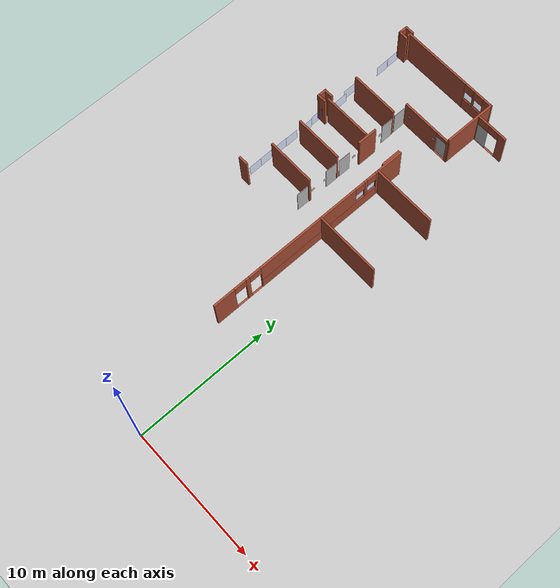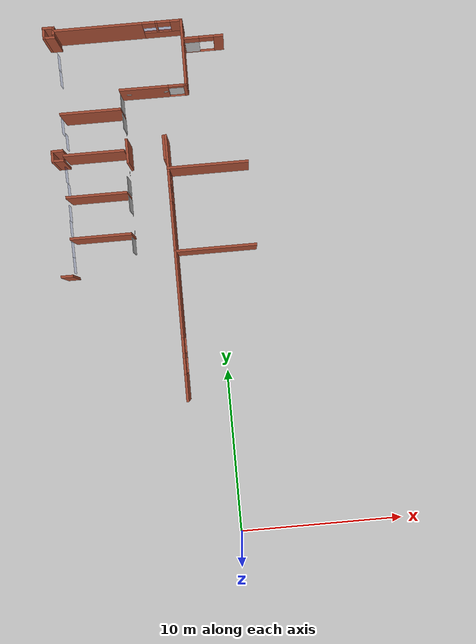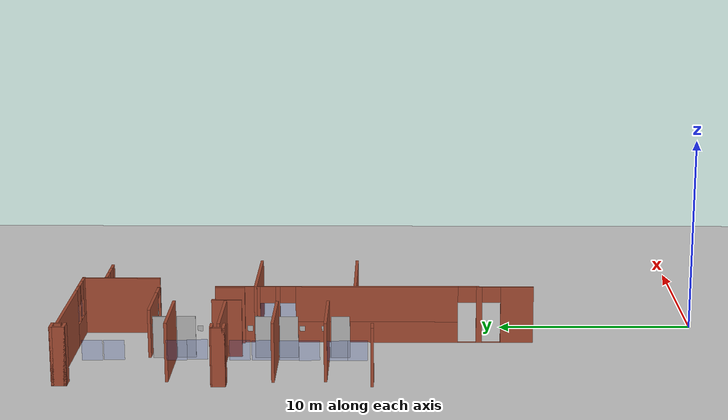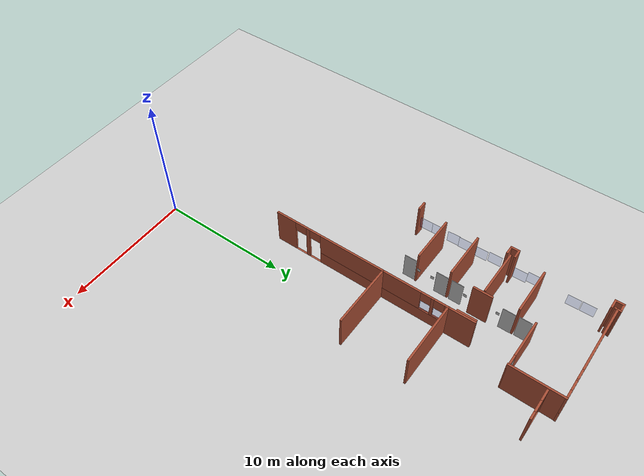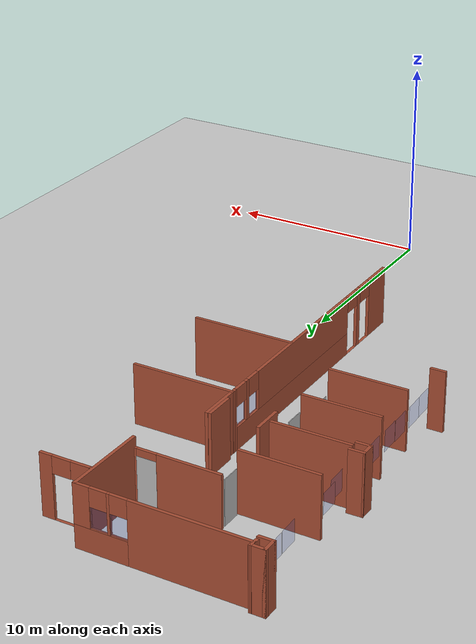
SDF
<sdf version="1.6">
 <world name="default">
  <model name="ground_plane">
   <static>1</static>
   <link name="link">
    <collision name="collision">
     <geometry><plane><normal>0 0 1</normal><size>100 100</size></plane></geometry>
     <surface><friction><ode><mu>100</mu><mu2>50</mu2></ode></friction></surface>
    </collision>
    <visual name="visual">
     <cast_shadows>0</cast_shadows>
     <geometry><plane><normal>0 0 1</normal><size>100 100</size></plane></geometry>
     <material>
      <script><uri>file://media/materials/scripts/gazebo.material</uri><name>Gazebo/Grey</name></script>
     </material>
    </visual>
   </link>
  </model>
  <model name="UNFRGS_INF_-_Predio_73">
   <pose>-0.02513 1.0401 -0.009 0 -0 0</pose>
   <link name="Wall_101">
    <collision name="Wall_101_Collision">
     <geometry><box><size>1.5 0.15 2.96</size></box></geometry>
     <pose>0 0 1.48 0 -0 0</pose>
    </collision>
    <visual name="Wall_101_Visual">
     <pose>0 0 1.48 0 -0 0</pose>
     <geometry><box><size>1.5 0.15 2.96</size></box></geometry>
     <material>
      <script><uri>file://media/materials/scripts/gazebo.material</uri><name>Gazebo/Bricks</name></script>
      <ambient>0.929412 1 0.760784 1</ambient>
     </material>
     <meta><layer>0</layer></meta>
    </visual>
    <pose>-2.61913 22.8618 0 0 0 -1.5708</pose>
   </link>
   <link name="Wall_105">
    <collision name="Wall_105_Collision">
     <geometry><box><size>3.75 0.15 2.96</size></box></geometry>
     <pose>0 0 1.48 0 -0 0</pose>
    </collision>
    <visual name="Wall_105_Visual">
     <pose>0 0 1.48 0 -0 0</pose>
     <geometry><box><size>3.75 0.15 2.96</size></box></geometry>
     <material>
      <script><uri>file://media/materials/scripts/gazebo.material</uri><name>Gazebo/Bricks</name></script>
      <ambient>0.929412 1 0.760784 1</ambient>
     </material>
     <meta><layer>0</layer></meta>
    </visual>
    <pose>-6.88513 17.7738 0 0 -0 0</pose>
   </link>
   <link name="Wall_4">
    <pose>-4.85113 30.6008 0 0 -0 0</pose>
    <visual name="Wall_4_Visual_0">
     <pose>-1.24227 0 1.48 0 -0 0</pose>
     <geometry><box><size>5.51545 0.15 2.96</size></box></geometry>
     <material>
      <script><uri>file://media/materials/scripts/gazebo.material</uri><name>Gazebo/Bricks</name></script>
      <ambient>0.929412 1 0.760784 1</ambient>
     </material>
     <meta><layer>0</layer></meta>
    </visual>
    <collision name="Wall_4_Collision_0">
     <geometry><box><size>5.51545 0.15 2.96</size></box></geometry>
     <pose>-1.24227 0 1.48 0 -0 0</pose>
    </collision>
    <visual name="Wall_4_Visual_1">
     <pose>2.75773 0 0.55 0 -0 0</pose>
     <geometry><box><size>2.48455 0.15 1.11</size></box></geometry>
     <material>
      <script><uri>file://media/materials/scripts/gazebo.material</uri><name>Gazebo/Bricks</name></script>
      <ambient>0.929412 1 0.760784 1</ambient>
     </material>
     <meta><layer>0</layer></meta>
    </visual>
    <collision name="Wall_4_Collision_1">
     <geometry><box><size>2.48455 0.15 1.11</size></box></geometry>
     <pose>2.75773 0 0.55 0 -0 0</pose>
    </collision>
    <visual name="Wall_4_Visual_2">
     <pose>2.37622 0 2.03 0 -0 0</pose>
     <geometry><box><size>0.121527 0.15 1.86</size></box></geometry>
     <material>
      <script><uri>file://media/materials/scripts/gazebo.material</uri><name>Gazebo/Bricks</name></script>
      <ambient>0.929412 1 0.760784 1</ambient>
     </material>
     <meta><layer>0</layer></meta>
    </visual>
    <collision name="Wall_4_Collision_2">
     <geometry><box><size>0.121527 0.15 1.86</size></box></geometry>
     <pose>2.37622 0 2.03 0 -0 0</pose>
    </collision>
    <visual name="Wall_4_Visual_3">
     <pose>3.61849 0 2.03 0 -0 0</pose>
     <geometry><box><size>0.76302 0.15 1.86</size></box></geometry>
     <material>
      <script><uri>file://media/materials/scripts/gazebo.material</uri><name>Gazebo/Bricks</name></script>
      <ambient>0.929412 1 0.760784 1</ambient>
     </material>
     <meta><layer>0</layer></meta>
    </visual>
    <collision name="Wall_4_Collision_3">
     <geometry><box><size>0.76302 0.15 1.86</size></box></geometry>
     <pose>3.61849 0 2.03 0 -0 0</pose>
    </collision>
    <visual name="Wall_4_Visual_4">
     <pose>1.91545 0 2.53 0 -0 0</pose>
     <geometry><box><size>0.8 0.15 0.86</size></box></geometry>
     <material>
      <script><uri>file://media/materials/scripts/gazebo.material</uri><name>Gazebo/Bricks</name></script>
      <ambient>0.929412 1 0.760784 1</ambient>
     </material>
     <meta><layer>0</layer></meta>
    </visual>
    <collision name="Wall_4_Collision_4">
     <geometry><box><size>0.8 0.15 0.86</size></box></geometry>
     <pose>1.91545 0 2.53 0 -0 0</pose>
    </collision>
    <visual name="Wall_4_Visual_5">
     <pose>2.83698 0 2.53 0 -0 0</pose>
     <geometry><box><size>0.8 0.15 0.86</size></box></geometry>
     <material>
      <script><uri>file://media/materials/scripts/gazebo.material</uri><name>Gazebo/Bricks</name></script>
      <ambient>0.929412 1 0.760784 1</ambient>
     </material>
     <meta><layer>0</layer></meta>
    </visual>
    <collision name="Wall_4_Collision_5">
     <geometry><box><size>0.8 0.15 0.86</size></box></geometry>
     <pose>2.83698 0 2.53 0 -0 0</pose>
    </collision>
   </link>
   <link name="Wall_50">
    <collision name="Wall_50_Collision">
     <geometry><box><size>4.04286 0.15 2.96</size></box></geometry>
     <pose>0 0 1.48 0 -0 0</pose>
    </collision>
    <visual name="Wall_50_Visual">
     <pose>0 0 1.48 0 -0 0</pose>
     <geometry><box><size>4.04286 0.15 2.96</size></box></geometry>
     <material>
      <script><uri>file://media/materials/scripts/gazebo.material</uri><name>Gazebo/Bricks</name></script>
      <ambient>0.929412 1 0.760784 1</ambient>
     </material>
     <meta><layer>0</layer></meta>
    </visual>
    <pose>-0.956524 28.6404 0 0 -0 1.56443</pose>
   </link>
   <link name="Wall_52">
    <pose>0.325867 29.4418 0 0 -0 3.14159</pose>
    <visual name="Wall_52_Visual_0">
     <pose>-0.938453 0 1.48 0 -0 0</pose>
     <geometry><box><size>0.607094 0.15 2.96</size></box></geometry>
     <material>
      <script><uri>file://media/materials/scripts/gazebo.material</uri><name>Gazebo/Bricks</name></script>
      <ambient>0.929412 1 0.760784 1</ambient>
     </material>
     <meta><layer>0</layer></meta>
    </visual>
    <collision name="Wall_52_Collision_0">
     <geometry><box><size>0.607094 0.15 2.96</size></box></geometry>
     <pose>-0.938453 0 1.48 0 -0 0</pose>
    </collision>
    <visual name="Wall_52_Visual_1">
     <pose>0.753547 0 0 0 -0 0</pose>
     <geometry><box><size>0.976906 0.15 0.001</size></box></geometry>
     <material>
      <script><uri>file://media/materials/scripts/gazebo.material</uri><name>Gazebo/Bricks</name></script>
      <ambient>0.929412 1 0.760784 1</ambient>
     </material>
     <meta><layer>0</layer></meta>
    </visual>
    <collision name="Wall_52_Collision_1">
     <geometry><box><size>0.976906 0.15 0.001</size></box></geometry>
     <pose>0.753547 0 0 0 -0 0</pose>
    </collision>
    <visual name="Wall_52_Visual_2">
     <pose>1.19498 0 1.48 0 -0 0</pose>
     <geometry><box><size>0.094037 0.15 2.96</size></box></geometry>
     <material>
      <script><uri>file://media/materials/scripts/gazebo.material</uri><name>Gazebo/Bricks</name></script>
      <ambient>0.929412 1 0.760784 1</ambient>
     </material>
     <meta><layer>0</layer></meta>
    </visual>
    <collision name="Wall_52_Collision_2">
     <geometry><box><size>0.094037 0.15 2.96</size></box></geometry>
     <pose>1.19498 0 1.48 0 -0 0</pose>
    </collision>
    <visual name="Wall_52_Visual_3">
     <pose>-0.184906 0 0 0 -0 0</pose>
     <geometry><box><size>0.9 0.15 0.001</size></box></geometry>
     <material>
      <script><uri>file://media/materials/scripts/gazebo.material</uri><name>Gazebo/Bricks</name></script>
      <ambient>0.929412 1 0.760784 1</ambient>
     </material>
     <meta><layer>0</layer></meta>
    </visual>
    <collision name="Wall_52_Collision_3">
     <geometry><box><size>0.9 0.15 0.001</size></box></geometry>
     <pose>-0.184906 0 0 0 -0 0</pose>
    </collision>
    <visual name="Wall_52_Visual_4">
     <pose>1.19498 0 1.48 0 -0 0</pose>
     <geometry><box><size>0.094037 0.15 2.96</size></box></geometry>
     <material>
      <script><uri>file://media/materials/scripts/gazebo.material</uri><name>Gazebo/Bricks</name></script>
      <ambient>0.929412 1 0.760784 1</ambient>
     </material>
     <meta><layer>0</layer></meta>
    </visual>
    <collision name="Wall_52_Collision_4">
     <geometry><box><size>0.094037 0.15 2.96</size></box></geometry>
     <pose>1.19498 0 1.48 0 -0 0</pose>
    </collision>
    <visual name="Wall_52_Visual_5">
     <pose>-0.190285 0 2.555 0 -0 0</pose>
     <geometry><box><size>0.889243 0.15 0.81</size></box></geometry>
     <material>
      <script><uri>file://media/materials/scripts/gazebo.material</uri><name>Gazebo/Bricks</name></script>
      <ambient>0.929412 1 0.760784 1</ambient>
     </material>
     <meta><layer>0</layer></meta>
    </visual>
    <collision name="Wall_52_Collision_5">
     <geometry><box><size>0.889243 0.15 0.81</size></box></geometry>
     <pose>-0.190285 0 2.555 0 -0 0</pose>
    </collision>
   </link>
   <link name="Wall_654">
    <pose>-2.99905 26.7022 0 0 0 -0.004056</pose>
    <visual name="Wall_654_Visual_0">
     <pose>-0.592576 0 1.25 0 -0 0</pose>
     <geometry><box><size>3.02515 0.15 2.5</size></box></geometry>
     <material>
      <script><uri>file://media/materials/scripts/gazebo.material</uri><name>Gazebo/Bricks</name></script>
      <ambient>0.929412 1 0.760784 1</ambient>
     </material>
     <meta><layer>0</layer></meta>
    </visual>
    <collision name="Wall_654_Collision_0">
     <geometry><box><size>3.02515 0.15 2.5</size></box></geometry>
     <pose>-0.592576 0 1.25 0 -0 0</pose>
    </collision>
    <visual name="Wall_654_Visual_1">
     <pose>1.98257 0 1.25 0 -0 0</pose>
     <geometry><box><size>0.245153 0.15 2.5</size></box></geometry>
     <material>
      <script><uri>file://media/materials/scripts/gazebo.material</uri><name>Gazebo/Bricks</name></script>
      <ambient>0.929412 1 0.760784 1</ambient>
     </material>
     <meta><layer>0</layer></meta>
    </visual>
    <collision name="Wall_654_Collision_1">
     <geometry><box><size>0.245153 0.15 2.5</size></box></geometry>
     <pose>1.98257 0 1.25 0 -0 0</pose>
    </collision>
    <visual name="Wall_654_Visual_2">
     <pose>1.39 0 0 0 -0 0</pose>
     <geometry><box><size>0.94 0.15 0.001</size></box></geometry>
     <material>
      <script><uri>file://media/materials/scripts/gazebo.material</uri><name>Gazebo/Bricks</name></script>
      <ambient>0.929412 1 0.760784 1</ambient>
     </material>
     <meta><layer>0</layer></meta>
    </visual>
    <collision name="Wall_654_Collision_2">
     <geometry><box><size>0.94 0.15 0.001</size></box></geometry>
     <pose>1.39 0 0 0 -0 0</pose>
    </collision>
    <visual name="Wall_654_Visual_3">
     <pose>1.39 0 2.325 0 -0 0</pose>
     <geometry><box><size>0.94 0.15 0.35</size></box></geometry>
     <material>
      <script><uri>file://media/materials/scripts/gazebo.material</uri><name>Gazebo/Bricks</name></script>
      <ambient>0.929412 1 0.760784 1</ambient>
     </material>
     <meta><layer>0</layer></meta>
    </visual>
    <collision name="Wall_654_Collision_3">
     <geometry><box><size>0.94 0.15 0.35</size></box></geometry>
     <pose>1.39 0 2.325 0 -0 0</pose>
    </collision>
   </link>
   <link name="Wall_66">
    <pose>-2.47513 15.5038 0 0 0 -1.5708</pose>
    <visual name="Wall_66_Visual_0">
     <pose>-6.97817 0 1.48 0 -0 0</pose>
     <geometry><box><size>2.29365 0.15 2.96</size></box></geometry>
     <material>
      <script><uri>file://media/materials/scripts/gazebo.material</uri><name>Gazebo/Bricks</name></script>
      <ambient>0.929412 1 0.760784 1</ambient>
     </material>
     <meta><layer>0</layer></meta>
    </visual>
    <collision name="Wall_66_Collision_0">
     <geometry><box><size>2.29365 0.15 2.96</size></box></geometry>
     <pose>-6.97817 0 1.48 0 -0 0</pose>
    </collision>
    <visual name="Wall_66_Visual_1">
     <pose>5.35833 0 1.48 0 -0 0</pose>
     <geometry><box><size>0.303652 0.15 2.96</size></box></geometry>
     <material>
      <script><uri>file://media/materials/scripts/gazebo.material</uri><name>Gazebo/Bricks</name></script>
      <ambient>0.929412 1 0.760784 1</ambient>
     </material>
     <meta><layer>0</layer></meta>
    </visual>
    <collision name="Wall_66_Collision_1">
     <geometry><box><size>0.303652 0.15 2.96</size></box></geometry>
     <pose>5.35833 0 1.48 0 -0 0</pose>
    </collision>
    <visual name="Wall_66_Visual_2">
     <pose>7.28758 0 1.48 0 -0 0</pose>
     <geometry><box><size>1.67484 0.15 2.96</size></box></geometry>
     <material>
      <script><uri>file://media/materials/scripts/gazebo.material</uri><name>Gazebo/Bricks</name></script>
      <ambient>0.929412 1 0.760784 1</ambient>
     </material>
     <meta><layer>0</layer></meta>
    </visual>
    <collision name="Wall_66_Collision_2">
     <geometry><box><size>1.67484 0.15 2.96</size></box></geometry>
     <pose>7.28758 0 1.48 0 -0 0</pose>
    </collision>
    <visual name="Wall_66_Visual_3">
     <pose>-0.782422 0 0.55 0 -0 0</pose>
     <geometry><box><size>10.0979 0.15 1.11</size></box></geometry>
     <material>
      <script><uri>file://media/materials/scripts/gazebo.material</uri><name>Gazebo/Bricks</name></script>
      <ambient>0.929412 1 0.760784 1</ambient>
     </material>
     <meta><layer>0</layer></meta>
    </visual>
    <collision name="Wall_66_Collision_3">
     <geometry><box><size>10.0979 0.15 1.11</size></box></geometry>
     <pose>-0.782422 0 0.55 0 -0 0</pose>
    </collision>
    <visual name="Wall_66_Visual_4">
     <pose>5.98016 0 0 0 -0 0</pose>
     <geometry><box><size>0.94 0.15 0.001</size></box></geometry>
     <material>
      <script><uri>file://media/materials/scripts/gazebo.material</uri><name>Gazebo/Bricks</name></script>
      <ambient>0.929412 1 0.760784 1</ambient>
     </material>
     <meta><layer>0</layer></meta>
    </visual>
    <collision name="Wall_66_Collision_4">
     <geometry><box><size>0.94 0.15 0.001</size></box></geometry>
     <pose>5.98016 0 0 0 -0 0</pose>
    </collision>
    <visual name="Wall_66_Visual_5">
     <pose>4.73651 0 0 0 -0 0</pose>
     <geometry><box><size>0.94 0.15 0.001</size></box></geometry>
     <material>
      <script><uri>file://media/materials/scripts/gazebo.material</uri><name>Gazebo/Bricks</name></script>
      <ambient>0.929412 1 0.760784 1</ambient>
     </material>
     <meta><layer>0</layer></meta>
    </visual>
    <collision name="Wall_66_Collision_5">
     <geometry><box><size>0.94 0.15 0.001</size></box></geometry>
     <pose>4.73651 0 0 0 -0 0</pose>
    </collision>
    <visual name="Wall_66_Visual_6">
     <pose>-4.92338 0 2.03 0 -0 0</pose>
     <geometry><box><size>0.215928 0.15 1.86</size></box></geometry>
     <material>
      <script><uri>file://media/materials/scripts/gazebo.material</uri><name>Gazebo/Bricks</name></script>
      <ambient>0.929412 1 0.760784 1</ambient>
     </material>
     <meta><layer>0</layer></meta>
    </visual>
    <collision name="Wall_66_Collision_6">
     <geometry><box><size>0.215928 0.15 1.86</size></box></geometry>
     <pose>-4.92338 0 2.03 0 -0 0</pose>
    </collision>
    <visual name="Wall_66_Visual_7">
     <pose>0.125542 0 2.03 0 -0 0</pose>
     <geometry><box><size>8.28193 0.15 1.86</size></box></geometry>
     <material>
      <script><uri>file://media/materials/scripts/gazebo.material</uri><name>Gazebo/Bricks</name></script>
      <ambient>0.929412 1 0.760784 1</ambient>
     </material>
     <meta><layer>0</layer></meta>
    </visual>
    <collision name="Wall_66_Collision_7">
     <geometry><box><size>8.28193 0.15 1.86</size></box></geometry>
     <pose>0.125542 0 2.03 0 -0 0</pose>
    </collision>
    <visual name="Wall_66_Visual_8">
     <pose>-5.43135 0 2.53 0 -0 0</pose>
     <geometry><box><size>0.8 0.15 0.86</size></box></geometry>
     <material>
      <script><uri>file://media/materials/scripts/gazebo.material</uri><name>Gazebo/Bricks</name></script>
      <ambient>0.929412 1 0.760784 1</ambient>
     </material>
     <meta><layer>0</layer></meta>
    </visual>
    <collision name="Wall_66_Collision_8">
     <geometry><box><size>0.8 0.15 0.86</size></box></geometry>
     <pose>-5.43135 0 2.53 0 -0 0</pose>
    </collision>
    <visual name="Wall_66_Visual_9">
     <pose>-4.41542 0 2.53 0 -0 0</pose>
     <geometry><box><size>0.8 0.15 0.86</size></box></geometry>
     <material>
      <script><uri>file://media/materials/scripts/gazebo.material</uri><name>Gazebo/Bricks</name></script>
      <ambient>0.929412 1 0.760784 1</ambient>
     </material>
     <meta><layer>0</layer></meta>
    </visual>
    <collision name="Wall_66_Collision_9">
     <geometry><box><size>0.8 0.15 0.86</size></box></geometry>
     <pose>-4.41542 0 2.53 0 -0 0</pose>
    </collision>
    <visual name="Wall_66_Visual_10">
     <pose>5.98016 0 2.555 0 -0 0</pose>
     <geometry><box><size>0.94 0.15 0.81</size></box></geometry>
     <material>
      <script><uri>file://media/materials/scripts/gazebo.material</uri><name>Gazebo/Bricks</name></script>
      <ambient>0.929412 1 0.760784 1</ambient>
     </material>
     <meta><layer>0</layer></meta>
    </visual>
    <collision name="Wall_66_Collision_10">
     <geometry><box><size>0.94 0.15 0.81</size></box></geometry>
     <pose>5.98016 0 2.555 0 -0 0</pose>
    </collision>
    <visual name="Wall_66_Visual_11">
     <pose>4.73651 0 2.555 0 -0 0</pose>
     <geometry><box><size>0.94 0.15 0.81</size></box></geometry>
     <material>
      <script><uri>file://media/materials/scripts/gazebo.material</uri><name>Gazebo/Bricks</name></script>
      <ambient>0.929412 1 0.760784 1</ambient>
     </material>
     <meta><layer>0</layer></meta>
    </visual>
    <collision name="Wall_66_Collision_11">
     <geometry><box><size>0.94 0.15 0.81</size></box></geometry>
     <pose>4.73651 0 2.555 0 -0 0</pose>
    </collision>
   </link>
   <link name="Wall_70">
    <collision name="Wall_70_Collision">
     <geometry><box><size>5 0.15 2.96</size></box></geometry>
     <pose>0 0 1.48 0 -0 0</pose>
    </collision>
    <visual name="Wall_70_Visual">
     <pose>0 0 1.48 0 -0 0</pose>
     <geometry><box><size>5 0.15 2.96</size></box></geometry>
     <material>
      <script><uri>file://media/materials/scripts/gazebo.material</uri><name>Gazebo/Bricks</name></script>
      <ambient>0.929412 1 0.760784 1</ambient>
     </material>
     <meta><layer>0</layer></meta>
    </visual>
    <pose>-0.059133 21.5698 0 0 -0 0</pose>
   </link>
   <link name="Wall_704">
    <collision name="Wall_704_Collision">
     <geometry><box><size>0.75 0.15 2.96</size></box></geometry>
     <pose>0 0 1.48 0 -0 0</pose>
    </collision>
    <visual name="Wall_704_Visual">
     <pose>0 0 1.48 0 -0 0</pose>
     <geometry><box><size>0.75 0.15 2.96</size></box></geometry>
     <material>
      <script><uri>file://media/materials/scripts/gazebo.material</uri><name>Gazebo/Bricks</name></script>
      <ambient>0.498039 0.498039 0.498039 1</ambient>
     </material>
     <meta><layer>0</layer></meta>
    </visual>
    <pose>-9.09213 15.5228 0 0 -0 3.14159</pose>
   </link>
   <link name="Wall_72">
    <collision name="Wall_72_Collision">
     <geometry><box><size>5 0.15 2.96</size></box></geometry>
     <pose>0 0 1.48 0 -0 0</pose>
    </collision>
    <visual name="Wall_72_Visual">
     <pose>0 0 1.48 0 -0 0</pose>
     <geometry><box><size>5 0.15 2.96</size></box></geometry>
     <material>
      <script><uri>file://media/materials/scripts/gazebo.material</uri><name>Gazebo/Bricks</name></script>
      <ambient>0.929412 1 0.760784 1</ambient>
     </material>
     <meta><layer>0</layer></meta>
    </visual>
    <pose>-0.005133 16.4838 0 0 -0 0</pose>
   </link>
   <link name="Wall_720">
    <collision name="Wall_720_Collision">
     <geometry><box><size>0.75 0.15 2.96</size></box></geometry>
     <pose>0 0 1.48 0 -0 0</pose>
    </collision>
    <visual name="Wall_720_Visual">
     <pose>0 0 1.48 0 -0 0</pose>
     <geometry><box><size>0.75 0.15 2.96</size></box></geometry>
     <material>
      <script><uri>file://media/materials/scripts/gazebo.material</uri><name>Gazebo/Bricks</name></script>
      <ambient>0.498039 0.498039 0.498039 1</ambient>
     </material>
     <meta><layer>0</layer></meta>
    </visual>
    <pose>-9.12013 23.1823 0 0 0 -3.1166</pose>
   </link>
   <link name="Wall_721">
    <collision name="Wall_721_Collision">
     <geometry><box><size>0.735384 0.15 2.96</size></box></geometry>
     <pose>0 0 1.48 0 -0 0</pose>
    </collision>
    <visual name="Wall_721_Visual">
     <pose>0 0 1.48 0 -0 0</pose>
     <geometry><box><size>0.735384 0.15 2.96</size></box></geometry>
     <material>
      <script><uri>file://media/materials/scripts/gazebo.material</uri><name>Gazebo/Bricks</name></script>
      <ambient>0.498039 0.498039 0.498039 1</ambient>
     </material>
     <meta><layer>0</layer></meta>
    </visual>
    <pose>-9.42013 22.8823 0 0 0 -1.5708</pose>
   </link>
   <link name="Wall_722">
    <collision name="Wall_722_Collision">
     <geometry><box><size>0.75 0.15 2.96</size></box></geometry>
     <pose>0 0 1.48 0 -0 0</pose>
    </collision>
    <visual name="Wall_722_Visual">
     <pose>0 0 1.48 0 -0 0</pose>
     <geometry><box><size>0.75 0.15 2.96</size></box></geometry>
     <material>
      <script><uri>file://media/materials/scripts/gazebo.material</uri><name>Gazebo/Bricks</name></script>
      <ambient>0.498039 0.498039 0.498039 1</ambient>
     </material>
     <meta><layer>0</layer></meta>
    </visual>
    <pose>-9.12013 22.5898 0 0 -0 0</pose>
   </link>
   <link name="Wall_731">
    <collision name="Wall_731_Collision">
     <geometry><box><size>0.501531 0.15 2.96</size></box></geometry>
     <pose>0 0 1.48 0 -0 0</pose>
    </collision>
    <visual name="Wall_731_Visual">
     <pose>0 0 1.48 0 -0 0</pose>
     <geometry><box><size>0.501531 0.15 2.96</size></box></geometry>
     <material>
      <script><uri>file://media/materials/scripts/gazebo.material</uri><name>Gazebo/Bricks</name></script>
      <ambient>0.498039 0.498039 0.498039 1</ambient>
     </material>
     <meta><layer>0</layer></meta>
    </visual>
    <pose>-8.78952 30.6298 0 0 -0 1.47742</pose>
   </link>
   <link name="Wall_732">
    <collision name="Wall_732_Collision">
     <geometry><box><size>0.75 0.15 2.96</size></box></geometry>
     <pose>0 0 1.48 0 -0 0</pose>
    </collision>
    <visual name="Wall_732_Visual">
     <pose>0 0 1.48 0 -0 0</pose>
     <geometry><box><size>0.75 0.15 2.96</size></box></geometry>
     <material>
      <script><uri>file://media/materials/scripts/gazebo.material</uri><name>Gazebo/Bricks</name></script>
      <ambient>0.498039 0.498039 0.498039 1</ambient>
     </material>
     <meta><layer>0</layer></meta>
    </visual>
    <pose>-9.07313 30.8048 0 0 -0 3.14159</pose>
   </link>
   <link name="Wall_733">
    <collision name="Wall_733_Collision">
     <geometry><box><size>0.75 0.15 2.96</size></box></geometry>
     <pose>0 0 1.48 0 -0 0</pose>
    </collision>
    <visual name="Wall_733_Visual">
     <pose>0 0 1.48 0 -0 0</pose>
     <geometry><box><size>0.75 0.15 2.96</size></box></geometry>
     <material>
      <script><uri>file://media/materials/scripts/gazebo.material</uri><name>Gazebo/Bricks</name></script>
      <ambient>0.498039 0.498039 0.498039 1</ambient>
     </material>
     <meta><layer>0</layer></meta>
    </visual>
    <pose>-9.37313 30.5048 0 0 0 -1.5708</pose>
   </link>
   <link name="Wall_734">
    <collision name="Wall_734_Collision">
     <geometry><box><size>0.75 0.15 2.96</size></box></geometry>
     <pose>0 0 1.48 0 -0 0</pose>
    </collision>
    <visual name="Wall_734_Visual">
     <pose>0 0 1.48 0 -0 0</pose>
     <geometry><box><size>0.75 0.15 2.96</size></box></geometry>
     <material>
      <script><uri>file://media/materials/scripts/gazebo.material</uri><name>Gazebo/Bricks</name></script>
      <ambient>0.498039 0.498039 0.498039 1</ambient>
     </material>
     <meta><layer>0</layer></meta>
    </visual>
    <pose>-9.07313 30.2048 0 0 -0 0</pose>
   </link>
   <link name="Wall_85">
    <collision name="Wall_85_Collision">
     <geometry><box><size>3.75 0.15 2.96</size></box></geometry>
     <pose>0 0 1.48 0 -0 0</pose>
    </collision>
    <visual name="Wall_85_Visual">
     <pose>0 0 1.48 0 -0 0</pose>
     <geometry><box><size>3.75 0.15 2.96</size></box></geometry>
     <material>
      <script><uri>file://media/materials/scripts/gazebo.material</uri><name>Gazebo/Bricks</name></script>
      <ambient>0.929412 1 0.760784 1</ambient>
     </material>
     <meta><layer>0</layer></meta>
    </visual>
    <pose>-6.91213 25.4278 0 0 -0 0</pose>
   </link>
   <link name="Wall_89">
    <collision name="Wall_89_Collision">
     <geometry><box><size>3.75 0.15 2.96</size></box></geometry>
     <pose>0 0 1.48 0 -0 0</pose>
    </collision>
    <visual name="Wall_89_Visual">
     <pose>0 0 1.48 0 -0 0</pose>
     <geometry><box><size>3.75 0.15 2.96</size></box></geometry>
     <material>
      <script><uri>file://media/materials/scripts/gazebo.material</uri><name>Gazebo/Bricks</name></script>
      <ambient>0.929412 1 0.760784 1</ambient>
     </material>
     <meta><layer>0</layer></meta>
    </visual>
    <pose>-6.91213 22.8768 0 0 -0 0</pose>
   </link>
   <link name="Wall_93">
    <collision name="Wall_93_Collision">
     <geometry><box><size>3.75 0.15 2.96</size></box></geometry>
     <pose>0 0 1.48 0 -0 0</pose>
    </collision>
    <visual name="Wall_93_Visual">
     <pose>0 0 1.48 0 -0 0</pose>
     <geometry><box><size>3.75 0.15 2.96</size></box></geometry>
     <material>
      <script><uri>file://media/materials/scripts/gazebo.material</uri><name>Gazebo/Bricks</name></script>
      <ambient>0.929412 1 0.760784 1</ambient>
     </material>
     <meta><layer>0</layer></meta>
    </visual>
    <pose>-6.94013 20.3048 0 0 -0 0</pose>
   </link>
   <link name="Wall_95">
    <collision name="Wall_95_Collision">
     <geometry><box><size>1.5 0.15 2.96</size></box></geometry>
     <pose>0 0 1.48 0 -0 0</pose>
    </collision>
    <visual name="Wall_95_Visual">
     <pose>0 0 1.48 0 -0 0</pose>
     <geometry><box><size>1.5 0.15 2.96</size></box></geometry>
     <material>
      <script><uri>file://media/materials/scripts/gazebo.material</uri><name>Gazebo/Bricks</name></script>
      <ambient>0.929412 1 0.760784 1</ambient>
     </material>
     <meta><layer>0</layer></meta>
    </visual>
    <pose>-4.87113 22.8328 0 0 0 -1.5708</pose>
   </link>
   <static>1</static>
  </model>
  <model name="placa_202">
   <pose>-2.28649 27.6362 1.48208 0 -0 0</pose>
   <static>1</static>
   <link name="link">
    <collision name="collision"><geometry><box><size>0.268 0.001 0.268</size></box></geometry></collision>
    <visual name="visual">
     <geometry><box><size>0.268 0.001 0.268</size></box></geometry>
     <material>
      <script>
       <uri>model://Placa_202/Materials/Scripts</uri>
       <uri>model://Placa_202/Materials/Textures</uri>
       <name>TexturaPlaca_202/Image</name>
      </script>
     </material>
    </visual>
   </link>
  </model>
  <model name="placa_204">
   <pose>-4.6 27.6362 1.48209 0 -0 0</pose>
   <static>1</static>
   <link name="link">
    <collision name="collision"><geometry><box><size>0.268 0.001 0.268</size></box></geometry></collision>
    <visual name="visual">
     <geometry><box><size>0.268 0.001 0.268</size></box></geometry>
     <material>
      <script>
       <uri>model://Placa_204/Materials/Scripts</uri>
       <uri>model://Placa_204/Materials/Textures</uri>
       <name>TexturaPlaca_204/Image</name>
      </script>
     </material>
    </visual>
   </link>
  </model>
  <model name="placa_206">
   <pose>-4.96 25.2 1.48208 0 -0 1.57</pose>
   <static>1</static>
   <link name="link">
    <collision name="collision"><geometry><box><size>0.268 0.001 0.268</size></box></geometry></collision>
    <visual name="visual">
     <geometry><box><size>0.268 0.001 0.268</size></box></geometry>
     <material>
      <script>
       <uri>model://Placa_206/Materials/Scripts</uri>
       <uri>model://Placa_206/Materials/Textures</uri>
       <name>TexturaPlaca_206/Image</name>
      </script>
     </material>
    </visual>
   </link>
  </model>
  <model name="placa_208">
   <pose>-4.96 22.7 1.48208 0 -0 1.57</pose>
   <static>1</static>
   <link name="link">
    <collision name="collision"><geometry><box><size>0.268 0.001 0.268</size></box></geometry></collision>
    <visual name="visual">
     <geometry><box><size>0.268 0.001 0.268</size></box></geometry>
     <material>
      <script>
       <uri>model://Placa_208/Materials/Scripts</uri>
       <uri>model://Placa_208/Materials/Textures</uri>
       <name>TexturaPlaca_208/Image</name>
      </script>
     </material>
    </visual>
   </link>
  </model>
  <model name="placa_210">
   <pose>-4.96 20.1 1.48208 0 -0 1.57</pose>
   <static>1</static>
   <link name="link">
    <collision name="collision"><geometry><box><size>0.268 0.001 0.268</size></box></geometry></collision>
    <visual name="visual">
     <geometry><box><size>0.268 0.001 0.268</size></box></geometry>
     <material>
      <script>
       <uri>model://Placa_210/Materials/Scripts</uri>
       <uri>model://Placa_210/Materials/Textures</uri>
       <name>TexturaPlaca_210/Image</name>
      </script>
     </material>
    </visual>
   </link>
  </model>
  <model name="placa_214">
   <pose>-4.96 19 1.48208 0 -0 1.57</pose>
   <static>1</static>
   <link name="link">
    <collision name="collision"><geometry><box><size>0.268 0.001 0.268</size></box></geometry></collision>
    <visual name="visual">
     <geometry><box><size>0.268 0.001 0.268</size></box></geometry>
     <material>
      <script>
       <uri>model://Placa_214/Materials/Scripts</uri>
       <uri>model://Placa_214/Materials/Textures</uri>
       <name>TexturaPlaca_214/Image</name>
      </script>
     </material>
    </visual>
   </link>
  </model>
  <model name="PortaInternaEsquerda">
   <pose>-5.1 20.775 1.075 0 -0 1.57</pose>
   <static>1</static>
   <link name="link">
    <collision name="collision"><geometry><box><size>2.15 3.5 0.94</size></box></geometry></collision>
    <visual name="visual">
     <geometry><box><size>0.94 0.035 2.15</size></box></geometry>
     <material>
      <script>
       <uri>model://PortaInternaEsquerda/materials/scripts</uri>
       <uri>model://PortaInternaEsquerda/materials/textures</uri>
       <name>TexturaPortaInternaEsquerda/Image</name>
      </script>
     </material>
    </visual>
   </link>
  </model>
  <model name="PortaInternaDireita">
   <pose>-5.1 21.98 1.075 0 -0 1.57</pose>
   <static>1</static>
   <link name="link">
    <collision name="collision"><geometry><box><size>2.15 3.5 0.94</size></box></geometry></collision>
    <visual name="visual">
     <geometry><box><size>0.94 0.035 2.15</size></box></geometry>
     <material>
      <script>
       <uri>model://PortaInternaDireita/materials/scripts</uri>
       <uri>model://PortaInternaDireita/materials/textures</uri>
       <name>TexturaPortaInternaDireita/Image</name>
      </script>
     </material>
    </visual>
   </link>
  </model>
  <model name="PortaInternaEsquerda_0">
   <pose>-5.06294 25.9 1.075 0 -0 1.57</pose>
   <static>1</static>
   <link name="link">
    <collision name="collision"><geometry><box><size>2.15 3.5 0.94</size></box></geometry></collision>
    <visual name="visual">
     <geometry><box><size>0.94 0.035 2.15</size></box></geometry>
     <material>
      <script>
       <uri>model://PortaInternaEsquerda/materials/scripts</uri>
       <uri>model://PortaInternaEsquerda/materials/textures</uri>
       <name>TexturaPortaInternaEsquerda/Image</name>
      </script>
     </material>
    </visual>
   </link>
  </model>
  <model name="PortaInternaDireita_0">
   <pose>-5.1 27.1 1.075 0 -0 1.57</pose>
   <static>1</static>
   <link name="link">
    <collision name="collision"><geometry><box><size>2.15 3.5 0.94</size></box></geometry></collision>
    <visual name="visual">
     <geometry><box><size>0.94 0.035 2.15</size></box></geometry>
     <material>
      <script>
       <uri>model://PortaInternaDireita/materials/scripts</uri>
       <uri>model://PortaInternaDireita/materials/textures</uri>
       <name>TexturaPortaInternaDireita/Image</name>
      </script>
     </material>
    </visual>
   </link>
  </model>
  <model name="PortaInternaEsquerda_1">
   <pose>-5.1 18.2 1.075 0 -0 1.57</pose>
   <static>1</static>
   <link name="link">
    <collision name="collision"><geometry><box><size>2.15 3.5 0.94</size></box></geometry></collision>
    <visual name="visual">
     <geometry><box><size>0.94 0.035 2.15</size></box></geometry>
     <material>
      <script>
       <uri>model://PortaInternaEsquerda/materials/scripts</uri>
       <uri>model://PortaInternaEsquerda/materials/textures</uri>
       <name>TexturaPortaInternaEsquerda/Image</name>
      </script>
     </material>
    </visual>
   </link>
  </model>
  <model name="PortaInternaEsquerda_22">
   <pose>-1.635 27.8 1.075 0 -0 0</pose>
   <static>1</static>
   <link name="link">
    <collision name="collision"><geometry><box><size>2.15 3.5 0.94</size></box></geometry></collision>
    <visual name="visual">
     <geometry><box><size>0.94 0.035 2.15</size></box></geometry>
     <material>
      <script>
       <uri>model://PortaInternaEsquerda/materials/scripts</uri>
       <uri>model://PortaInternaEsquerda/materials/textures</uri>
       <name>TexturaPortaInternaEsquerda/Image</name>
      </script>
     </material>
    </visual>
   </link>
  </model>
  <model name="fatia_parede">
   <pose>-0.402028 30.4788 1.30149 0 -0 0</pose>
   <link name="Wall_2">
    <collision name="Wall_2_Collision">
     <geometry><box><size>0.9 0.15 0.8</size></box></geometry>
     <pose>0 0 1.25 0 -0 0</pose>
    </collision>
    <visual name="Wall_2_Visual">
     <pose>0 0 1.25 0 -0 0</pose>
     <geometry><box><size>0.9 0.15 0.8</size></box></geometry>
     <material>
      <script><uri>file://media/materials/scripts/gazebo.material</uri><name>Gazebo/Bricks</name></script>
      <ambient>0.929412 1 0.760784 1</ambient>
     </material>
     <meta><layer>0</layer></meta>
    </visual>
    <pose>0 0 0 0 -0 3.14159</pose>
   </link>
   <static>1</static>
  </model>
  <model name="PortaExternaEsquerda_g">
   <pose>-0.414135 30.4547 1.07978 0 -0 0</pose>
   <static>1</static>
   <link name="link">
    <collision name="collision"><geometry><box><size>2.15 3.5 0.9</size></box></geometry></collision>
    <visual name="visual">
     <geometry><box><size>0.9 0.035 2.15</size></box></geometry>
     <material>
      <script>
       <uri>model://PortaExternaDireita/materials/scripts</uri>
       <uri>model://PortaExternaDireita/materials/textures</uri>
       <name>TexturaPortaExternaDireita/Image</name>
      </script>
     </material>
    </visual>
   </link>
  </model>
  <model name="vidro_1">
   <pose>-2.05497 31.6507 0.352057 0 -0 0</pose>
   <link name="Wall_2">
    <collision name="Wall_2_Collision">
     <geometry><box><size>1 0.001 1</size></box></geometry>
     <pose>0 0 1.25 0 -0 0</pose>
    </collision>
    <visual name="Wall_2_Visual">
     <pose>0 0 1.25 0 -0 0</pose>
     <transparency>0.8</transparency>
     <geometry><box><size>1 0.001 1</size></box></geometry>
     <material>
      <script><uri>file://media/materials/scripts/gazebo.material</uri><name>Gazebo/BlueTransparent</name></script>
      <ambient>0.1 0.1 0.1 0.1</ambient>
     </material>
     <meta><layer>0</layer></meta>
    </visual>
    <pose>0 0 0 0 -0 3.14159</pose>
   </link>
   <static>1</static>
  </model>
  <model name="vidro_2">
   <pose>-3.03644 31.657 0.353325 0 -0 0</pose>
   <link name="Wall_2">
    <collision name="Wall_2_Collision">
     <geometry><box><size>1 0.001 1</size></box></geometry>
     <pose>0 0 1.25 0 -0 0</pose>
    </collision>
    <visual name="Wall_2_Visual">
     <pose>0 0 1.25 0 -0 0</pose>
     <transparency>0.8</transparency>
     <geometry><box><size>1 0.001 1</size></box></geometry>
     <material>
      <script><uri>file://media/materials/scripts/gazebo.material</uri><name>Gazebo/BlueTransparent</name></script>
      <ambient>0.1 0.1 0.1 0.1</ambient>
     </material>
     <meta><layer>0</layer></meta>
    </visual>
    <pose>0 0 0 0 -0 3.14159</pose>
   </link>
   <static>1</static>
  </model>
  <model name="vidro_47">
   <pose>-8.76548 30.0011 0.336394 0 0 -1.55</pose>
   <link name="Wall_2">
    <collision name="Wall_2_Collision">
     <geometry><box><size>1 0.001 1</size></box></geometry>
     <pose>0 0 1.25 0 -0 0</pose>
    </collision>
    <visual name="Wall_2_Visual">
     <pose>0 0 1.25 0 -0 0</pose>
     <transparency>0.8</transparency>
     <geometry><box><size>1 0.001 1</size></box></geometry>
     <material>
      <script><uri>file://media/materials/scripts/gazebo.material</uri><name>Gazebo/BlueTransparent</name></script>
      <ambient>0.1 0.1 0.1 0.1</ambient>
     </material>
     <meta><layer>0</layer></meta>
    </visual>
    <pose>0 0 0 0 -0 3.14159</pose>
   </link>
   <static>1</static>
  </model>
  <model name="vidro_48">
   <pose>-8.72952 28.953 0.332778 0 0 -1.55</pose>
   <link name="Wall_2">
    <collision name="Wall_2_Collision">
     <geometry><box><size>1 0.001 1</size></box></geometry>
     <pose>0 0 1.25 0 -0 0</pose>
    </collision>
    <visual name="Wall_2_Visual">
     <pose>0 0 1.25 0 -0 0</pose>
     <transparency>0.8</transparency>
     <geometry><box><size>1 0.001 1</size></box></geometry>
     <material>
      <script><uri>file://media/materials/scripts/gazebo.material</uri><name>Gazebo/BlueTransparent</name></script>
      <ambient>0.1 0.1 0.1 0.1</ambient>
     </material>
     <meta><layer>0</layer></meta>
    </visual>
    <pose>0 0 0 0 -0 3.14159</pose>
   </link>
   <static>1</static>
  </model>
  <model name="vidro_49">
   <pose>-8.85746 25.9382 0.364622 0 0 -1.55</pose>
   <link name="Wall_2">
    <collision name="Wall_2_Collision">
     <geometry><box><size>1 0.001 1</size></box></geometry>
     <pose>0 0 1.25 0 -0 0</pose>
    </collision>
    <visual name="Wall_2_Visual">
     <pose>0 0 1.25 0 -0 0</pose>
     <transparency>0.8</transparency>
     <geometry><box><size>1 0.001 1</size></box></geometry>
     <material>
      <script><uri>file://media/materials/scripts/gazebo.material</uri><name>Gazebo/BlueTransparent</name></script>
      <ambient>0.1 0.1 0.1 0.1</ambient>
     </material>
     <meta><layer>0</layer></meta>
    </visual>
    <pose>0 0 0 0 -0 3.14159</pose>
   </link>
   <static>1</static>
  </model>
  <model name="vidro_50">
   <pose>-8.66135 24.9707 0.349192 0 0 -1.55</pose>
   <link name="Wall_2">
    <collision name="Wall_2_Collision">
     <geometry><box><size>1 0.001 1</size></box></geometry>
     <pose>0 0 1.25 0 -0 0</pose>
    </collision>
    <visual name="Wall_2_Visual">
     <pose>0 0 1.25 0 -0 0</pose>
     <transparency>0.8</transparency>
     <geometry><box><size>1 0.001 1</size></box></geometry>
     <material>
      <script><uri>file://media/materials/scripts/gazebo.material</uri><name>Gazebo/BlueTransparent</name></script>
      <ambient>0.1 0.1 0.1 0.1</ambient>
     </material>
     <meta><layer>0</layer></meta>
    </visual>
    <pose>0 0 0 0 -0 3.14159</pose>
   </link>
   <static>1</static>
  </model>
  <model name="vidro_51">
   <pose>-8.8546 22.9099 0.374302 0 0 -1.55</pose>
   <link name="Wall_2">
    <collision name="Wall_2_Collision">
     <geometry><box><size>1 0.001 1</size></box></geometry>
     <pose>0 0 1.25 0 -0 0</pose>
    </collision>
    <visual name="Wall_2_Visual">
     <pose>0 0 1.25 0 -0 0</pose>
     <transparency>0.8</transparency>
     <geometry><box><size>1 0.001 1</size></box></geometry>
     <material>
      <script><uri>file://media/materials/scripts/gazebo.material</uri><name>Gazebo/BlueTransparent</name></script>
      <ambient>0.1 0.1 0.1 0.1</ambient>
     </material>
     <meta><layer>0</layer></meta>
    </visual>
    <pose>0 0 0 0 -0 3.14159</pose>
   </link>
   <static>1</static>
  </model>
  <model name="vidro_52">
   <pose>-8.77643 21.8393 0.34442 0 0 -1.55</pose>
   <link name="Wall_2">
    <collision name="Wall_2_Collision">
     <geometry><box><size>1 0.001 1</size></box></geometry>
     <pose>0 0 1.25 0 -0 0</pose>
    </collision>
    <visual name="Wall_2_Visual">
     <pose>0 0 1.25 0 -0 0</pose>
     <transparency>0.8</transparency>
     <geometry><box><size>1 0.001 1</size></box></geometry>
     <material>
      <script><uri>file://media/materials/scripts/gazebo.material</uri><name>Gazebo/BlueTransparent</name></script>
      <ambient>0.1 0.1 0.1 0.1</ambient>
     </material>
     <meta><layer>0</layer></meta>
    </visual>
    <pose>0 0 0 0 -0 3.14159</pose>
   </link>
   <static>1</static>
  </model>
  <model name="vidro_53">
   <pose>-8.80378 20.5166 0.352967 0 0 -1.55</pose>
   <link name="Wall_2">
    <collision name="Wall_2_Collision">
     <geometry><box><size>1 0.001 1</size></box></geometry>
     <pose>0 0 1.25 0 -0 0</pose>
    </collision>
    <visual name="Wall_2_Visual">
     <pose>0 0 1.25 0 -0 0</pose>
     <transparency>0.8</transparency>
     <geometry><box><size>1 0.001 1</size></box></geometry>
     <material>
      <script><uri>file://media/materials/scripts/gazebo.material</uri><name>Gazebo/BlueTransparent</name></script>
      <ambient>0.1 0.1 0.1 0.1</ambient>
     </material>
     <meta><layer>0</layer></meta>
    </visual>
    <pose>0 0 0 0 -0 3.14159</pose>
   </link>
   <static>1</static>
  </model>
  <model name="vidro_54">
   <pose>-8.81888 19.5765 0.354762 0 0 -1.55</pose>
   <link name="Wall_2">
    <collision name="Wall_2_Collision">
     <geometry><box><size>1 0.001 1</size></box></geometry>
     <pose>0 0 1.25 0 -0 0</pose>
    </collision>
    <visual name="Wall_2_Visual">
     <pose>0 0 1.25 0 -0 0</pose>
     <transparency>0.8</transparency>
     <geometry><box><size>1 0.001 1</size></box></geometry>
     <material>
      <script><uri>file://media/materials/scripts/gazebo.material</uri><name>Gazebo/BlueTransparent</name></script>
      <ambient>0.1 0.1 0.1 0.1</ambient>
     </material>
     <meta><layer>0</layer></meta>
    </visual>
    <pose>0 0 0 0 -0 3.14159</pose>
   </link>
   <static>1</static>
  </model>
  <model name="vidro_55">
   <pose>-8.82027 18.2355 0.339967 0 0 -1.55</pose>
   <link name="Wall_2">
    <collision name="Wall_2_Collision">
     <geometry><box><size>1 0.001 1</size></box></geometry>
     <pose>0 0 1.25 0 -0 0</pose>
    </collision>
    <visual name="Wall_2_Visual">
     <pose>0 0 1.25 0 -0 0</pose>
     <transparency>0.8</transparency>
     <geometry><box><size>1 0.001 1</size></box></geometry>
     <material>
      <script><uri>file://media/materials/scripts/gazebo.material</uri><name>Gazebo/BlueTransparent</name></script>
      <ambient>0.1 0.1 0.1 0.1</ambient>
     </material>
     <meta><layer>0</layer></meta>
    </visual>
    <pose>0 0 0 0 -0 3.14159</pose>
   </link>
   <static>1</static>
  </model>
  <model name="vidro_56">
   <pose>-8.79834 17.2816 0.347838 0 0 -1.55</pose>
   <link name="Wall_2">
    <collision name="Wall_2_Collision">
     <geometry><box><size>1 0.001 1</size></box></geometry>
     <pose>0 0 1.25 0 -0 0</pose>
    </collision>
    <visual name="Wall_2_Visual">
     <pose>0 0 1.25 0 -0 0</pose>
     <transparency>0.8</transparency>
     <geometry><box><size>1 0.001 1</size></box></geometry>
     <material>
      <script><uri>file://media/materials/scripts/gazebo.material</uri><name>Gazebo/BlueTransparent</name></script>
      <ambient>0.1 0.1 0.1 0.1</ambient>
     </material>
     <meta><layer>0</layer></meta>
    </visual>
    <pose>0 0 0 0 -0 3.14159</pose>
   </link>
   <static>1</static>
  </model>
  <model name="vidro_95">
   <pose>-2.48865 22.0049 0.323303 0 -0 1.6</pose>
   <link name="Wall_2">
    <collision name="Wall_2_Collision">
     <geometry><box><size>1 0.001 1</size></box></geometry>
     <pose>0 0 1.25 0 -0 0</pose>
    </collision>
    <visual name="Wall_2_Visual">
     <pose>0 0 1.25 0 -0 0</pose>
     <transparency>0.8</transparency>
     <geometry><box><size>1 0.001 1</size></box></geometry>
     <material>
      <script><uri>file://media/materials/scripts/gazebo.material</uri><name>Gazebo/BlueTransparent</name></script>
      <ambient>0.1 0.1 0.1 0.1</ambient>
     </material>
     <meta><layer>0</layer></meta>
    </visual>
    <pose>0 0 0 0 -0 3.14159</pose>
   </link>
   <static>1</static>
  </model>
  <model name="vidro_96">
   <pose>-2.5054 20.9763 0.357797 0 -0 1.65</pose>
   <link name="Wall_2">
    <collision name="Wall_2_Collision">
     <geometry><box><size>1 0.001 1</size></box></geometry>
     <pose>0 0 1.25 0 -0 0</pose>
    </collision>
    <visual name="Wall_2_Visual">
     <pose>0 0 1.25 0 -0 0</pose>
     <transparency>0.8</transparency>
     <geometry><box><size>1 0.001 1</size></box></geometry>
     <material>
      <script><uri>file://media/materials/scripts/gazebo.material</uri><name>Gazebo/BlueTransparent</name></script>
      <ambient>0.1 0.1 0.1 0.1</ambient>
     </material>
     <meta><layer>0</layer></meta>
    </visual>
    <pose>0 0 0 0 -0 3.14159</pose>
   </link>
   <static>1</static>
  </model>
 </world>
</sdf>
